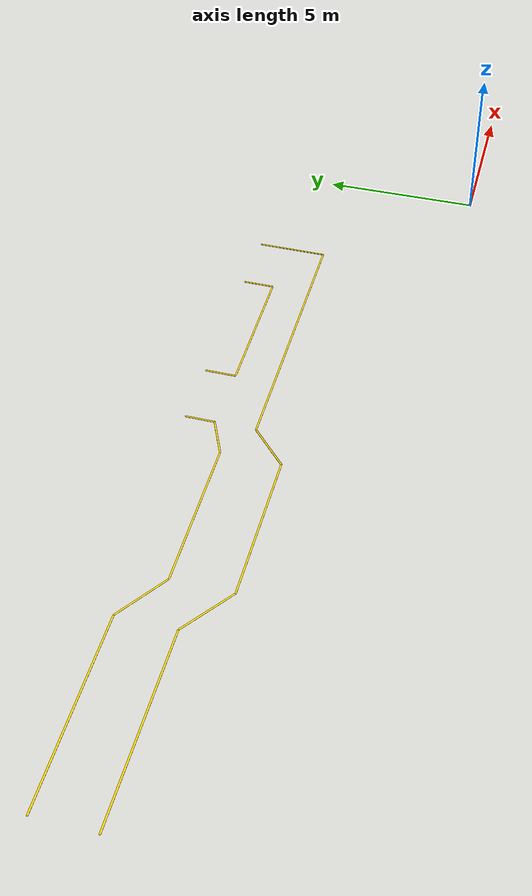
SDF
<?xml version="1.0" ?>
<sdf version="1.10">
  <model name="yellow_tape_lines_427">
    <static>true</static>

    <link name="tape_segments">
    <!-- Segment 1: A to B, length 86.000 in / 2.184 m -->
    <collision name="tape_A_B_collision">
      <pose>-3.810051 5.487645 0.012000 0 0 -1.570796</pose>
      <geometry>
        <box><size>2.184400 0.050800 0.006000</size></box>
      </geometry>
    </collision>
    <visual name="tape_A_B_visual">
      <pose>-3.810051 5.487645 0.012000 0 0 -1.570796</pose>
      <geometry>
        <box><size>2.184400 0.050800 0.006000</size></box>
      </geometry>
      <material>
          <ambient>1.0 0.85 0.0 1</ambient>
          <diffuse>1.0 0.85 0.0 1</diffuse>
          <specular>0.2 0.2 0.05 1</specular>
      </material>
    </visual>
    <!-- Segment 2: B to J, length 316.998 in / 8.052 m -->
    <collision name="tape_B_J_collision">
      <pose>-7.835925 4.395445 0.012000 0 0 3.141593</pose>
      <geometry>
        <box><size>8.051749 0.050800 0.006000</size></box>
      </geometry>
    </collision>
    <visual name="tape_B_J_visual">
      <pose>-7.835925 4.395445 0.012000 0 0 3.141593</pose>
      <geometry>
        <box><size>8.051749 0.050800 0.006000</size></box>
      </geometry>
      <material>
          <ambient>1.0 0.85 0.0 1</ambient>
          <diffuse>1.0 0.85 0.0 1</diffuse>
          <specular>0.2 0.2 0.05 1</specular>
      </material>
    </visual>
    <!-- Segment 3: J to K, length 59.709 in / 1.517 m -->
    <collision name="tape_J_K_collision">
      <pose>-12.400737 3.861994 0.012000 0 0 -2.361311</pose>
      <geometry>
        <box><size>1.516606 0.050800 0.006000</size></box>
      </geometry>
    </collision>
    <visual name="tape_J_K_visual">
      <pose>-12.400737 3.861994 0.012000 0 0 -2.361311</pose>
      <geometry>
        <box><size>1.516606 0.050800 0.006000</size></box>
      </geometry>
      <material>
          <ambient>1.0 0.85 0.0 1</ambient>
          <diffuse>1.0 0.85 0.0 1</diffuse>
          <specular>0.2 0.2 0.05 1</specular>
      </material>
    </visual>
    <!-- Segment 4: K to M, length 175.001 in / 4.445 m -->
    <collision name="tape_K_M_collision">
      <pose>-15.162187 3.328543 0.012000 0 0 3.141593</pose>
      <geometry>
        <box><size>4.445025 0.050800 0.006000</size></box>
      </geometry>
    </collision>
    <visual name="tape_K_M_visual">
      <pose>-15.162187 3.328543 0.012000 0 0 3.141593</pose>
      <geometry>
        <box><size>4.445025 0.050800 0.006000</size></box>
      </geometry>
      <material>
          <ambient>1.0 0.85 0.0 1</ambient>
          <diffuse>1.0 0.85 0.0 1</diffuse>
          <specular>0.2 0.2 0.05 1</specular>
      </material>
    </visual>
    <!-- Segment 5: M to O, length 69.445 in / 1.764 m -->
    <collision name="tape_M_O_collision">
      <pose>-18.077675 3.874097 0.012000 0 0 2.474667</pose>
      <geometry>
        <box><size>1.763909 0.050800 0.006000</size></box>
      </geometry>
    </collision>
    <visual name="tape_M_O_visual">
      <pose>-18.077675 3.874097 0.012000 0 0 2.474667</pose>
      <geometry>
        <box><size>1.763909 0.050800 0.006000</size></box>
      </geometry>
      <material>
          <ambient>1.0 0.85 0.0 1</ambient>
          <diffuse>1.0 0.85 0.0 1</diffuse>
          <specular>0.2 0.2 0.05 1</specular>
      </material>
    </visual>
    <!-- Segment 6: O to P, length 213.000 in / 5.410 m -->
    <collision name="tape_O_P_collision">
      <pose>-21.475751 4.419651 0.012000 0 0 3.141593</pose>
      <geometry>
        <box><size>5.410200 0.050800 0.006000</size></box>
      </geometry>
    </collision>
    <visual name="tape_O_P_visual">
      <pose>-21.475751 4.419651 0.012000 0 0 3.141593</pose>
      <geometry>
        <box><size>5.410200 0.050800 0.006000</size></box>
      </geometry>
      <material>
          <ambient>1.0 0.85 0.0 1</ambient>
          <diffuse>1.0 0.85 0.0 1</diffuse>
          <specular>0.2 0.2 0.05 1</specular>
      </material>
    </visual>
    <!-- Segment 7: Q to N, length 213.000 in / 5.410 m -->
    <collision name="tape_Q_N_collision">
      <pose>-21.475751 6.172225 0.012000 0 0 0.000000</pose>
      <geometry>
        <box><size>5.410200 0.050800 0.006000</size></box>
      </geometry>
    </collision>
    <visual name="tape_Q_N_visual">
      <pose>-21.475751 6.172225 0.012000 0 0 0.000000</pose>
      <geometry>
        <box><size>5.410200 0.050800 0.006000</size></box>
      </geometry>
      <material>
          <ambient>1.0 0.85 0.0 1</ambient>
          <diffuse>1.0 0.85 0.0 1</diffuse>
          <specular>0.2 0.2 0.05 1</specular>
      </material>
    </visual>
    <!-- Segment 8: N to L, length 67.629 in / 1.718 m -->
    <collision name="tape_N_L_collision">
      <pose>-18.077675 5.664810 0.012000 0 0 -0.632029</pose>
      <geometry>
        <box><size>1.717773 0.050800 0.006000</size></box>
      </geometry>
    </collision>
    <visual name="tape_N_L_visual">
      <pose>-18.077675 5.664810 0.012000 0 0 -0.632029</pose>
      <geometry>
        <box><size>1.717773 0.050800 0.006000</size></box>
      </geometry>
      <material>
          <ambient>1.0 0.85 0.0 1</ambient>
          <diffuse>1.0 0.85 0.0 1</diffuse>
          <specular>0.2 0.2 0.05 1</specular>
      </material>
    </visual>
    <!-- Segment 9: L to I, length 175.001 in / 4.445 m -->
    <collision name="tape_L_I_collision">
      <pose>-15.162187 5.157394 0.012000 0 0 0.000000</pose>
      <geometry>
        <box><size>4.445025 0.050800 0.006000</size></box>
      </geometry>
    </collision>
    <visual name="tape_L_I_visual">
      <pose>-15.162187 5.157394 0.012000 0 0 0.000000</pose>
      <geometry>
        <box><size>4.445025 0.050800 0.006000</size></box>
      </geometry>
      <material>
          <ambient>1.0 0.85 0.0 1</ambient>
          <diffuse>1.0 0.85 0.0 1</diffuse>
          <specular>0.2 0.2 0.05 1</specular>
      </material>
    </visual>
    <!-- Segment 10: I to H, length 46.914 in / 1.192 m -->
    <collision name="tape_I_H_collision">
      <pose>-12.400737 5.411419 0.012000 0 0 0.440462</pose>
      <geometry>
        <box><size>1.191608 0.050800 0.006000</size></box>
      </geometry>
    </collision>
    <visual name="tape_I_H_visual">
      <pose>-12.400737 5.411419 0.012000 0 0 0.440462</pose>
      <geometry>
        <box><size>1.191608 0.050800 0.006000</size></box>
      </geometry>
      <material>
          <ambient>1.0 0.85 0.0 1</ambient>
          <diffuse>1.0 0.85 0.0 1</diffuse>
          <specular>0.2 0.2 0.05 1</specular>
      </material>
    </visual>
    <!-- Segment 11: H to G, length 36.000 in / 0.914 m -->
    <collision name="tape_H_G_collision">
      <pose>-11.861800 6.122645 0.012000 0 0 1.570796</pose>
      <geometry>
        <box><size>0.914400 0.050800 0.006000</size></box>
      </geometry>
    </collision>
    <visual name="tape_H_G_visual">
      <pose>-11.861800 6.122645 0.012000 0 0 1.570796</pose>
      <geometry>
        <box><size>0.914400 0.050800 0.006000</size></box>
      </geometry>
      <material>
          <ambient>1.0 0.85 0.0 1</ambient>
          <diffuse>1.0 0.85 0.0 1</diffuse>
          <specular>0.2 0.2 0.05 1</specular>
      </material>
    </visual>
    <!-- Segment 12: C to D, length 38.000 in / 0.965 m -->
    <collision name="tape_C_D_collision">
      <pose>-5.765902 6.097245 0.012000 0 0 -1.570796</pose>
      <geometry>
        <box><size>0.965200 0.050800 0.006000</size></box>
      </geometry>
    </collision>
    <visual name="tape_C_D_visual">
      <pose>-5.765902 6.097245 0.012000 0 0 -1.570796</pose>
      <geometry>
        <box><size>0.965200 0.050800 0.006000</size></box>
      </geometry>
      <material>
          <ambient>1.0 0.85 0.0 1</ambient>
          <diffuse>1.0 0.85 0.0 1</diffuse>
          <specular>0.2 0.2 0.05 1</specular>
      </material>
    </visual>
    <!-- Segment 13: D to E, length 163.874 in / 4.162 m -->
    <collision name="tape_D_E_collision">
      <pose>-7.847101 5.614645 0.012000 0 0 3.141593</pose>
      <geometry>
        <box><size>4.162400 0.050800 0.006000</size></box>
      </geometry>
    </collision>
    <visual name="tape_D_E_visual">
      <pose>-7.847101 5.614645 0.012000 0 0 3.141593</pose>
      <geometry>
        <box><size>4.162400 0.050800 0.006000</size></box>
      </geometry>
      <material>
          <ambient>1.0 0.85 0.0 1</ambient>
          <diffuse>1.0 0.85 0.0 1</diffuse>
          <specular>0.2 0.2 0.05 1</specular>
      </material>
    </visual>
    <!-- Segment 14: E to F, length 38.000 in / 0.965 m -->
    <collision name="tape_E_F_collision">
      <pose>-9.928301 6.097245 0.012000 0 0 1.570796</pose>
      <geometry>
        <box><size>0.965200 0.050800 0.006000</size></box>
      </geometry>
    </collision>
    <visual name="tape_E_F_visual">
      <pose>-9.928301 6.097245 0.012000 0 0 1.570796</pose>
      <geometry>
        <box><size>0.965200 0.050800 0.006000</size></box>
      </geometry>
      <material>
          <ambient>1.0 0.85 0.0 1</ambient>
          <diffuse>1.0 0.85 0.0 1</diffuse>
          <specular>0.2 0.2 0.05 1</specular>
      </material>
    </visual>
    </link>
  </model>
</sdf>
